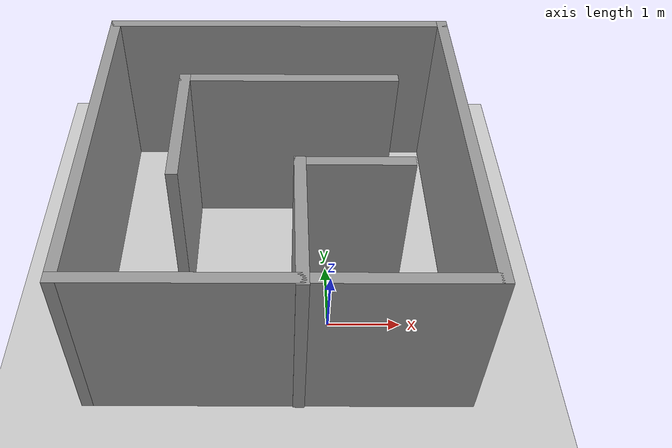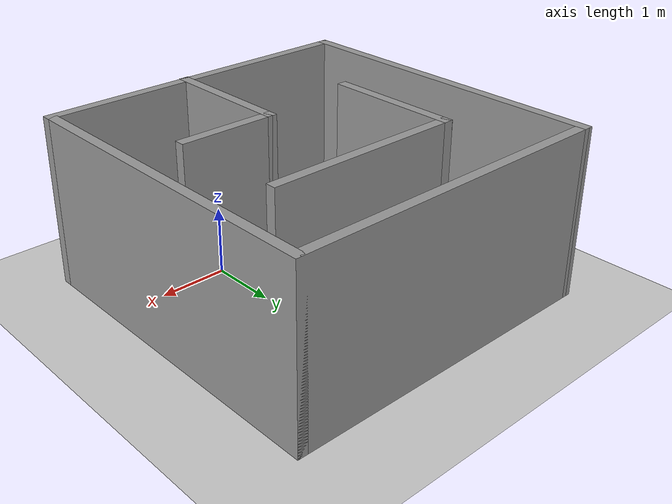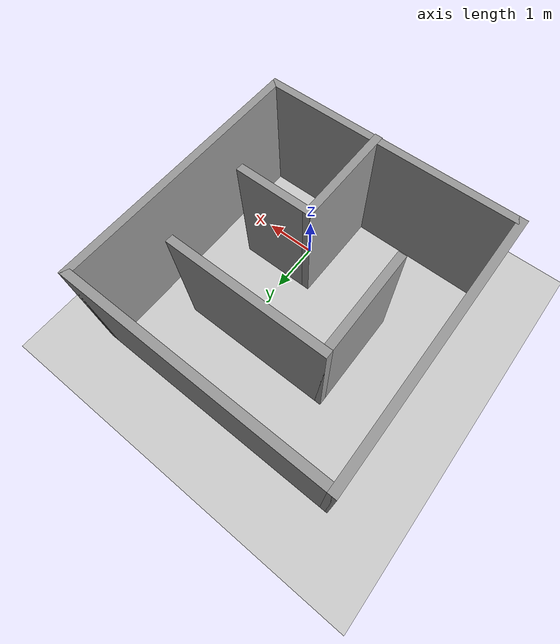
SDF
<sdf version="1.7">
 <world name="default">
  <light name="sun" type="directional">
   <pose>0 0 10 0 -0 0</pose>
   <diffuse>0.8 0.8 0.8 1</diffuse>
   <specular>0.2 0.2 0.2 1</specular>
   <attenuation>
    <range>1000</range>
    <constant>0.9</constant>
    <linear>0.01</linear>
    <quadratic>0.001</quadratic>
   </attenuation>
   <direction>-0.5 0.1 -0.9</direction>
   <spot><inner_angle>0</inner_angle><outer_angle>0</outer_angle><falloff>0</falloff></spot>
  </light>
  <model name="ground_plane">
   <static>1</static>
   <link name="link">
    <collision name="collision">
     <geometry><plane><normal>0 0 1</normal><size>100 100</size></plane></geometry>
     <surface><friction><ode><mu>100</mu><mu2>50</mu2></ode></friction></surface>
    </collision>
    <visual name="visual">
     <cast_shadows>0</cast_shadows>
     <geometry><plane><normal>0 0 1</normal><size>100 100</size></plane></geometry>
     <material>
      <script><uri>file://media/materials/scripts/gazebo.material</uri><name>Gazebo/Grey</name></script>
     </material>
    </visual>
   </link>
  </model>
  <gravity>0 0 -9.8</gravity>
  <magnetic_field>6e-06 2.3e-05 -4.2e-05</magnetic_field>
  <atmosphere type="adiabatic"/>
  <physics type="ode">
   <max_step_size>0.001</max_step_size>
   <real_time_factor>1</real_time_factor>
   <real_time_update_rate>1000</real_time_update_rate>
  </physics>
  <scene><ambient>0.4 0.4 0.4 1</ambient><background>0.7 0.7 0.7 1</background><shadows>1</shadows></scene>
  <audio><device>default</device></audio>
  <spherical_coordinates>
   <surface_model>EARTH_WGS84</surface_model>
   <latitude_deg>0</latitude_deg>
   <longitude_deg>0</longitude_deg>
   <elevation>0</elevation>
   <heading_deg>0</heading_deg>
  </spherical_coordinates>
  <model name="my_bot">
   <link name="base_link">
    <inertial>
     <pose>0.055714 0 0.078571 0 -0 0</pose>
     <mass>0.7</mass>
     <inertia>
      <ixx>0.0064169</ixx>
      <ixy>0</ixy>
      <ixz>0.00118929</ixz>
      <iyy>0.00745405</iyy>
      <iyz>0</iyz>
      <izz>0.00876214</izz>
     </inertia>
    </inertial>
    <collision name="base_link_fixed_joint_lump__chassis_collision">
     <pose>0.05 0 0.075 0 -0 0</pose>
     <geometry><box><size>0.3 0.3 0.15</size></box></geometry>
    </collision>
    <collision name="base_link_fixed_joint_lump__caster_wheel_collision_1">
     <pose>0.14 0 0 0 -0 0</pose>
     <geometry><sphere><radius>0.05</radius></sphere></geometry>
     <surface><friction><ode><mu>0.001</mu><mu2>0.001</mu2></ode></friction></surface>
    </collision>
    <collision name="base_link_fixed_joint_lump__laser_frame_collision_2">
     <pose>0 0 0.175 0 -0 0</pose>
     <geometry><cylinder><length>0.04</length><radius>0.05</radius></cylinder></geometry>
    </collision>
    <visual name="base_link_fixed_joint_lump__chassis_visual">
     <pose>0.05 0 0.075 0 -0 0</pose>
     <geometry><box><size>0.3 0.3 0.15</size></box></geometry>
     <material>
      <script><name>Gazebo/White</name><uri>file://media/materials/scripts/gazebo.material</uri></script>
     </material>
    </visual>
    <visual name="base_link_fixed_joint_lump__caster_wheel_visual_1">
     <pose>0.14 0 0 0 -0 0</pose>
     <geometry><sphere><radius>0.05</radius></sphere></geometry>
     <material>
      <script><name>Gazebo/Black</name><uri>file://media/materials/scripts/gazebo.material</uri></script>
     </material>
    </visual>
    <visual name="base_link_fixed_joint_lump__laser_frame_visual_2">
     <pose>0 0 0.175 0 -0 0</pose>
     <geometry><cylinder><length>0.04</length><radius>0.05</radius></cylinder></geometry>
     <material>
      <script><name>Gazebo/Red</name><uri>file://media/materials/scripts/gazebo.material</uri></script>
     </material>
    </visual>
    <sensor name="laser" type="ray">
     <visualize>1</visualize>
     <update_rate>10</update_rate>
     <ray>
      <scan>
       <horizontal>
        <samples>180</samples>
        <resolution>1</resolution>
        <min_angle>-1.57</min_angle>
        <max_angle>1.57</max_angle>
       </horizontal>
       <vertical><samples>1</samples><min_angle>0</min_angle><max_angle>0</max_angle></vertical>
      </scan>
      <range><min>0.3</min><max>12</max><resolution>0.01</resolution></range>
     </ray>
     <plugin name="laser_controller" filename="libgazebo_ros_ray_sensor.so">
      <ros><argument>~/out:=scan</argument></ros>
      <output_type>sensor_msgs/LaserScan</output_type>
      <frame_name>laser_frame</frame_name>
     </plugin>
     <pose>0 0 0.175 0 -0 0</pose>
    </sensor>
   </link>
   <joint name="left_wheel_joint" type="revolute">
    <pose relative_to="base_link">0 0.175 0 -1.5708 0 0</pose>
    <parent>base_link</parent>
    <child>left_wheel</child>
    <axis>
     <xyz>0 0 1</xyz>
     <limit><lower>-1e+16</lower><upper>1e+16</upper></limit>
     <dynamics><spring_reference>0</spring_reference><spring_stiffness>0</spring_stiffness></dynamics>
    </axis>
   </joint>
   <link name="left_wheel">
    <pose relative_to="left_wheel_joint">0 0 0 0 -0 0</pose>
    <inertial>
     <mass>0.1</mass>
     <inertia>
      <ixx>7.58333e-05</ixx>
      <ixy>0</ixy>
      <ixz>0</ixz>
      <iyy>7.58333e-05</iyy>
      <iyz>0</iyz>
      <izz>0.000125</izz>
     </inertia>
    </inertial>
    <collision name="left_wheel_collision">
     <geometry><cylinder><length>0.04</length><radius>0.05</radius></cylinder></geometry>
    </collision>
    <visual name="left_wheel_visual">
     <geometry><cylinder><length>0.04</length><radius>0.05</radius></cylinder></geometry>
     <material>
      <script><name>Gazebo/Blue</name><uri>file://media/materials/scripts/gazebo.material</uri></script>
     </material>
    </visual>
   </link>
   <joint name="right_wheel_joint" type="revolute">
    <pose relative_to="base_link">0 -0.175 0 1.5708 -0 0</pose>
    <parent>base_link</parent>
    <child>right_wheel</child>
    <axis>
     <xyz>0 0 -1</xyz>
     <limit><lower>-1e+16</lower><upper>1e+16</upper></limit>
     <dynamics><spring_reference>0</spring_reference><spring_stiffness>0</spring_stiffness></dynamics>
    </axis>
   </joint>
   <link name="right_wheel">
    <pose relative_to="right_wheel_joint">0 0 0 0 -0 0</pose>
    <inertial>
     <mass>0.1</mass>
     <inertia>
      <ixx>7.58333e-05</ixx>
      <ixy>0</ixy>
      <ixz>0</ixz>
      <iyy>7.58333e-05</iyy>
      <iyz>0</iyz>
      <izz>0.000125</izz>
     </inertia>
    </inertial>
    <collision name="right_wheel_collision">
     <geometry><cylinder><length>0.04</length><radius>0.05</radius></cylinder></geometry>
    </collision>
    <visual name="right_wheel_visual">
     <geometry><cylinder><length>0.04</length><radius>0.05</radius></cylinder></geometry>
     <material>
      <script><name>Gazebo/Blue</name><uri>file://media/materials/scripts/gazebo.material</uri></script>
     </material>
    </visual>
   </link>
   <static>0</static>
   <plugin name="gazebo_ros2_control" filename="libgazebo_ros2_control.so">
    <parameters>/home/carloso/ros2_ws_23_2/install/f1_12th_simulator_g01/share/f1_12th_simulator_g01/config/my_controllers.yaml</parameters>
   </plugin>
   <pose>0.003338 -1.3e-05 0.05 0 1e-06 0.000519</pose>
  </model>
  <model name="wallF.world">
   <pose>-0.688042 1.22258 0 0 -0 0</pose>
   <link name="Wall_10">
    <collision name="Wall_10_Collision">
     <geometry><box><size>3 0.15 2.5</size></box></geometry>
     <pose>0 0 1.25 0 -0 0</pose>
    </collision>
    <visual name="Wall_10_Visual">
     <pose>0 0 1.25 0 -0 0</pose>
     <geometry><box><size>3 0.15 2.5</size></box></geometry>
     <material>
      <script><uri>file://media/materials/scripts/gazebo.material</uri><name>Gazebo/Grey</name></script>
      <ambient>1 1 1 1</ambient>
     </material>
     <meta><layer>0</layer></meta>
    </visual>
    <pose>0.140656 1.09503 0 0 -0 0</pose>
   </link>
   <link name="Wall_13">
    <collision name="Wall_13_Collision">
     <geometry><box><size>2 0.15 2.5</size></box></geometry>
     <pose>0 0 1.25 0 -0 0</pose>
    </collision>
    <visual name="Wall_13_Visual">
     <pose>0 0 1.25 0 -0 0</pose>
     <geometry><box><size>2 0.15 2.5</size></box></geometry>
     <material>
      <script><uri>file://media/materials/scripts/gazebo.material</uri><name>Gazebo/Grey</name></script>
      <ambient>1 1 1 1</ambient>
     </material>
     <meta><layer>0</layer></meta>
    </visual>
    <pose>0.266949 -1.5084 0 0 -0 1.5708</pose>
   </link>
   <link name="Wall_14">
    <collision name="Wall_14_Collision">
     <geometry><box><size>1.5 0.15 2.5</size></box></geometry>
     <pose>0 0 1.25 0 -0 0</pose>
    </collision>
    <visual name="Wall_14_Visual">
     <pose>0 0 1.25 0 -0 0</pose>
     <geometry><box><size>1.5 0.15 2.5</size></box></geometry>
     <material>
      <script><uri>file://media/materials/scripts/gazebo.material</uri><name>Gazebo/Grey</name></script>
      <ambient>1 1 1 1</ambient>
     </material>
     <meta><layer>0</layer></meta>
    </visual>
    <pose>0.941949 -0.5834 0 0 -0 0</pose>
   </link>
   <link name="Wall_3">
    <collision name="Wall_3_Collision">
     <geometry><box><size>5 0.15 2.5</size></box></geometry>
     <pose>0 0 1.25 0 -0 0</pose>
    </collision>
    <visual name="Wall_3_Visual">
     <pose>0 0 1.25 0 -0 0</pose>
     <geometry><box><size>5 0.15 2.5</size></box></geometry>
     <material>
      <script><uri>file://media/materials/scripts/gazebo.material</uri><name>Gazebo/Grey</name></script>
      <ambient>1 1 1 1</ambient>
     </material>
     <meta><layer>0</layer></meta>
    </visual>
    <pose>0 2.4334 0 0 -0 0</pose>
   </link>
   <link name="Wall_4">
    <collision name="Wall_4_Collision">
     <geometry><box><size>5 0.15 2.5</size></box></geometry>
     <pose>0 0 1.25 0 -0 0</pose>
    </collision>
    <visual name="Wall_4_Visual">
     <pose>0 0 1.25 0 -0 0</pose>
     <geometry><box><size>5 0.15 2.5</size></box></geometry>
     <material>
      <script><uri>file://media/materials/scripts/gazebo.material</uri><name>Gazebo/Grey</name></script>
      <ambient>1 1 1 1</ambient>
     </material>
     <meta><layer>0</layer></meta>
    </visual>
    <pose>2.425 0.0084 0 0 -0 -1.5708</pose>
   </link>
   <link name="Wall_5">
    <collision name="Wall_5_Collision">
     <geometry><box><size>5 0.15 2.5</size></box></geometry>
     <pose>0 0 1.25 0 -0 0</pose>
    </collision>
    <visual name="Wall_5_Visual">
     <pose>0 0 1.25 0 -0 0</pose>
     <geometry><box><size>5 0.15 2.5</size></box></geometry>
     <material>
      <script><uri>file://media/materials/scripts/gazebo.material</uri><name>Gazebo/Grey</name></script>
      <ambient>1 1 1 1</ambient>
     </material>
     <meta><layer>0</layer></meta>
    </visual>
    <pose>0 -2.4166 0 0 -0 3.14159</pose>
   </link>
   <link name="Wall_6">
    <collision name="Wall_6_Collision">
     <geometry><box><size>5 0.15 2.5</size></box></geometry>
     <pose>0 0 1.25 0 -0 0</pose>
    </collision>
    <visual name="Wall_6_Visual">
     <pose>0 0 1.25 0 -0 0</pose>
     <geometry><box><size>5 0.15 2.5</size></box></geometry>
     <material>
      <script><uri>file://media/materials/scripts/gazebo.material</uri><name>Gazebo/Grey</name></script>
      <ambient>1 1 1 1</ambient>
     </material>
     <meta><layer>0</layer></meta>
    </visual>
    <pose>-2.425 0.0084 0 0 -0 1.5708</pose>
   </link>
   <link name="Wall_8">
    <collision name="Wall_8_Collision">
     <geometry><box><size>2 0.15 2.5</size></box></geometry>
     <pose>0 0 1.25 0 -0 0</pose>
    </collision>
    <visual name="Wall_8_Visual">
     <pose>0 0 1.25 0 -0 0</pose>
     <geometry><box><size>2 0.15 2.5</size></box></geometry>
     <material>
      <script><uri>file://media/materials/scripts/gazebo.material</uri><name>Gazebo/Grey</name></script>
      <ambient>1 1 1 1</ambient>
     </material>
     <meta><layer>0</layer></meta>
    </visual>
    <pose>-1.28434 0.17003 0 0 -0 -1.5708</pose>
   </link>
   <static>1</static>
  </model>
 </world>
</sdf>
